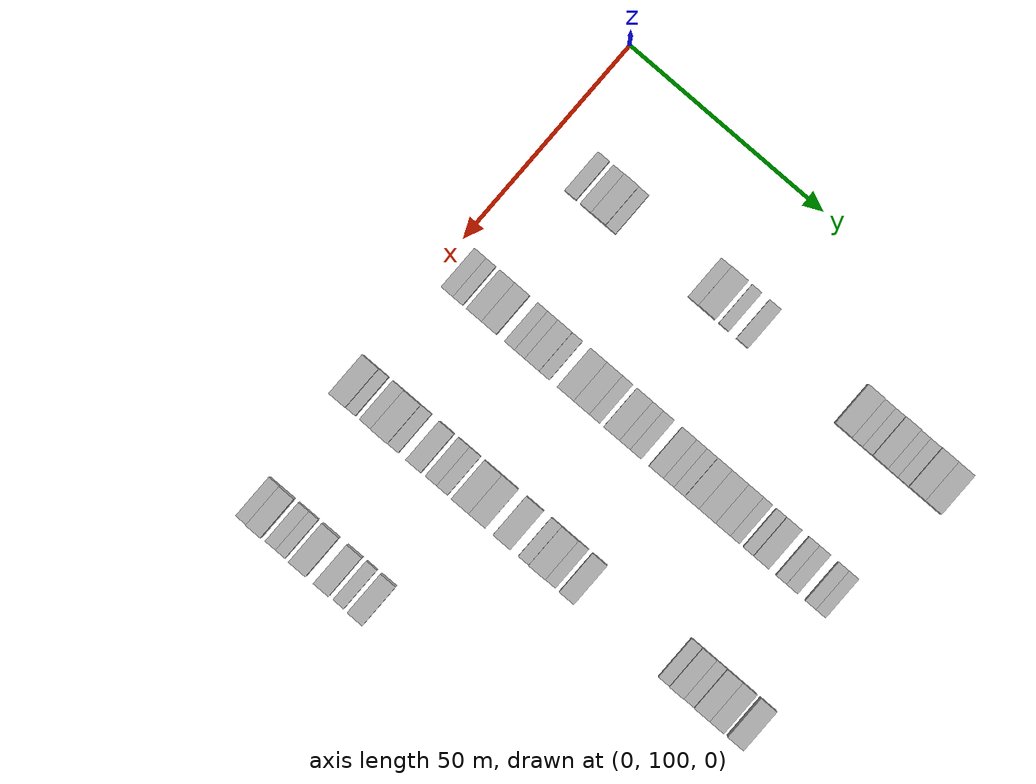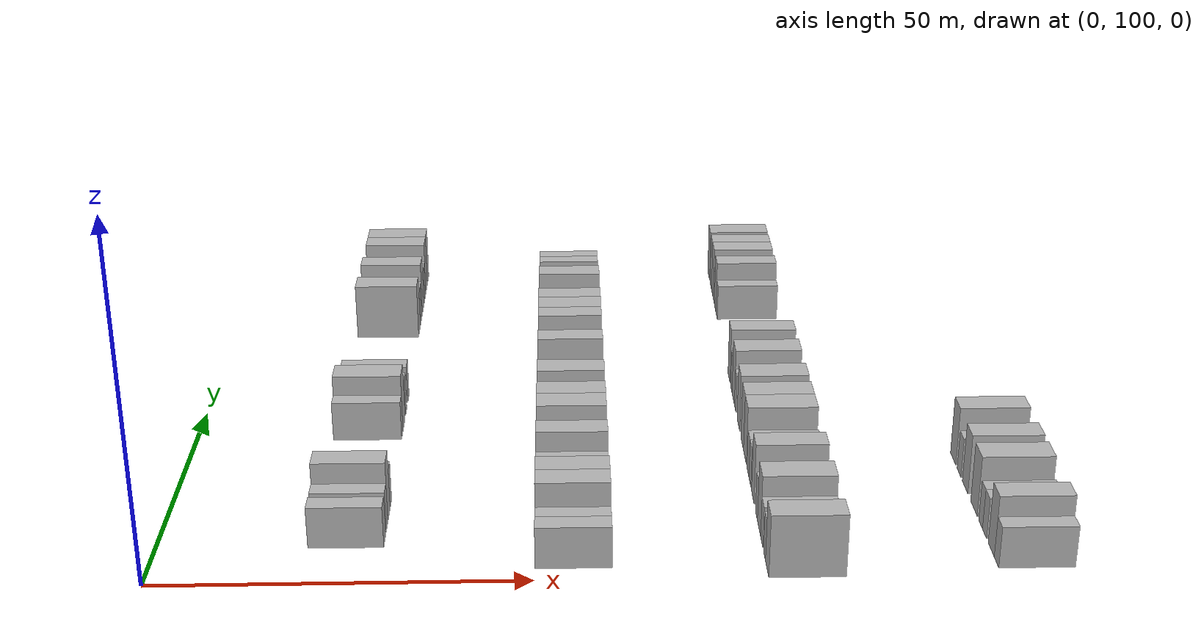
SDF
<sdf version="1.6">
 <world name="default">
  <model name="building_125">
   <static>1</static>
   <pose>25.0000 110.4807 0 0.000000 0.000000 0.000000</pose>
   <link name="link">
    <pose>0 0 3.00 0 0 0</pose>
    <collision name="collision"><geometry><box><size>10.0000 2.9662 6.0000</size></box></geometry></collision>
    <visual name="visual">
     <cast_shadows>0</cast_shadows>
     <geometry><box><size>10.0000 2.9662 6.0000</size></box></geometry>
     <material>
      <script>
       <uri>model://HANNAS_wall/materials/scripts</uri>
       <uri>model://HANNAS_wall/materials/textures</uri>
       <name>vrc/HANNAS_wall</name>
      </script>
     </material>
    </visual>
   </link>
  </model>
  <model name="building_126">
   <static>1</static>
   <pose>25.0000 114.3628 0 0.000000 0.000000 0.000000</pose>
   <link name="link">
    <pose>0 0 3.00 0 0 0</pose>
    <collision name="collision"><geometry><box><size>10.0000 2.7980 6.0000</size></box></geometry></collision>
    <visual name="visual">
     <cast_shadows>0</cast_shadows>
     <geometry><box><size>10.0000 2.7980 6.0000</size></box></geometry>
     <material>
      <script>
       <uri>model://HANNAS_wall/materials/scripts</uri>
       <uri>model://HANNAS_wall/materials/textures</uri>
       <name>vrc/HANNAS_wall</name>
      </script>
     </material>
    </visual>
   </link>
  </model>
  <model name="building_127">
   <static>1</static>
   <pose>25.0000 117.6512 0 0.000000 0.000000 0.000000</pose>
   <link name="link">
    <pose>0 0 4.50 0 0 0</pose>
    <collision name="collision"><geometry><box><size>10.0000 3.7790 9.0000</size></box></geometry></collision>
    <visual name="visual">
     <cast_shadows>0</cast_shadows>
     <geometry><box><size>10.0000 3.7790 9.0000</size></box></geometry>
     <material>
      <script>
       <uri>model://HANNAS_wall/materials/scripts</uri>
       <uri>model://HANNAS_wall/materials/textures</uri>
       <name>vrc/HANNAS_wall</name>
      </script>
     </material>
    </visual>
   </link>
  </model>
  <model name="building_128">
   <static>1</static>
   <pose>25.0000 120.8240 0 0.000000 0.000000 0.000000</pose>
   <link name="link">
    <pose>0 0 3.00 0 0 0</pose>
    <collision name="collision"><geometry><box><size>10.0000 2.5666 6.0000</size></box></geometry></collision>
    <visual name="visual">
     <cast_shadows>0</cast_shadows>
     <geometry><box><size>10.0000 2.5666 6.0000</size></box></geometry>
     <material>
      <script>
       <uri>model://HANNAS_wall/materials/scripts</uri>
       <uri>model://HANNAS_wall/materials/textures</uri>
       <name>vrc/HANNAS_wall</name>
      </script>
     </material>
    </visual>
   </link>
  </model>
  <model name="building_129">
   <static>1</static>
   <pose>25.0000 142.0770 0 0.000000 0.000000 0.000000</pose>
   <link name="link">
    <pose>0 0 3.00 0 0 0</pose>
    <collision name="collision"><geometry><box><size>10.0000 2.6464 6.0000</size></box></geometry></collision>
    <visual name="visual">
     <cast_shadows>0</cast_shadows>
     <geometry><box><size>10.0000 2.6464 6.0000</size></box></geometry>
     <material>
      <script>
       <uri>model://HANNAS_wall/materials/scripts</uri>
       <uri>model://HANNAS_wall/materials/textures</uri>
       <name>vrc/HANNAS_wall</name>
      </script>
     </material>
    </visual>
   </link>
  </model>
  <model name="building_130">
   <static>1</static>
   <pose>25.0000 145.5510 0 0.000000 0.000000 0.000000</pose>
   <link name="link">
    <pose>0 0 4.50 0 0 0</pose>
    <collision name="collision"><geometry><box><size>10.0000 4.3016 9.0000</size></box></geometry></collision>
    <visual name="visual">
     <cast_shadows>0</cast_shadows>
     <geometry><box><size>10.0000 4.3016 9.0000</size></box></geometry>
     <material>
      <script>
       <uri>model://HANNAS_wall/materials/scripts</uri>
       <uri>model://HANNAS_wall/materials/textures</uri>
       <name>vrc/HANNAS_wall</name>
      </script>
     </material>
    </visual>
   </link>
  </model>
  <model name="building_131">
   <static>1</static>
   <pose>25.0000 149.9685 0 0.000000 0.000000 0.000000</pose>
   <link name="link">
    <pose>0 0 3.00 0 0 0</pose>
    <collision name="collision"><geometry><box><size>10.0000 2.5332 6.0000</size></box></geometry></collision>
    <visual name="visual">
     <cast_shadows>0</cast_shadows>
     <geometry><box><size>10.0000 2.5332 6.0000</size></box></geometry>
     <material>
      <script>
       <uri>model://HANNAS_wall/materials/scripts</uri>
       <uri>model://HANNAS_wall/materials/textures</uri>
       <name>vrc/HANNAS_wall</name>
      </script>
     </material>
    </visual>
   </link>
  </model>
  <model name="building_132">
   <static>1</static>
   <pose>25.0000 154.7337 0 0.000000 0.000000 0.000000</pose>
   <link name="link">
    <pose>0 0 3.00 0 0 0</pose>
    <collision name="collision"><geometry><box><size>10.0000 2.9973 6.0000</size></box></geometry></collision>
    <visual name="visual">
     <cast_shadows>0</cast_shadows>
     <geometry><box><size>10.0000 2.9973 6.0000</size></box></geometry>
     <material>
      <script>
       <uri>model://HANNAS_wall/materials/scripts</uri>
       <uri>model://HANNAS_wall/materials/textures</uri>
       <name>vrc/HANNAS_wall</name>
      </script>
     </material>
    </visual>
   </link>
  </model>
  <model name="building_133">
   <static>1</static>
   <pose>25.0000 180.7126 0 0.000000 0.000000 0.000000</pose>
   <link name="link">
    <pose>0 0 4.50 0 0 0</pose>
    <collision name="collision"><geometry><box><size>10.0000 4.3202 9.0000</size></box></geometry></collision>
    <visual name="visual">
     <cast_shadows>0</cast_shadows>
     <geometry><box><size>10.0000 4.3202 9.0000</size></box></geometry>
     <material>
      <script>
       <uri>model://HANNAS_wall/materials/scripts</uri>
       <uri>model://HANNAS_wall/materials/textures</uri>
       <name>vrc/HANNAS_wall</name>
      </script>
     </material>
    </visual>
   </link>
  </model>
  <model name="building_134">
   <static>1</static>
   <pose>25.0000 184.2763 0 0.000000 0.000000 0.000000</pose>
   <link name="link">
    <pose>0 0 3.00 0 0 0</pose>
    <collision name="collision"><geometry><box><size>10.0000 2.8073 6.0000</size></box></geometry></collision>
    <visual name="visual">
     <cast_shadows>0</cast_shadows>
     <geometry><box><size>10.0000 2.8073 6.0000</size></box></geometry>
     <material>
      <script>
       <uri>model://HANNAS_wall/materials/scripts</uri>
       <uri>model://HANNAS_wall/materials/textures</uri>
       <name>vrc/HANNAS_wall</name>
      </script>
     </material>
    </visual>
   </link>
  </model>
  <model name="building_135">
   <static>1</static>
   <pose>25.0000 186.9488 0 0.000000 0.000000 0.000000</pose>
   <link name="link">
    <pose>0 0 3.00 0 0 0</pose>
    <collision name="collision"><geometry><box><size>10.0000 2.5378 6.0000</size></box></geometry></collision>
    <visual name="visual">
     <cast_shadows>0</cast_shadows>
     <geometry><box><size>10.0000 2.5378 6.0000</size></box></geometry>
     <material>
      <script>
       <uri>model://HANNAS_wall/materials/scripts</uri>
       <uri>model://HANNAS_wall/materials/textures</uri>
       <name>vrc/HANNAS_wall</name>
      </script>
     </material>
    </visual>
   </link>
  </model>
  <model name="building_136">
   <static>1</static>
   <pose>25.0000 190.1653 0 0.000000 0.000000 0.000000</pose>
   <link name="link">
    <pose>0 0 4.50 0 0 0</pose>
    <collision name="collision"><geometry><box><size>10.0000 3.8951 9.0000</size></box></geometry></collision>
    <visual name="visual">
     <cast_shadows>0</cast_shadows>
     <geometry><box><size>10.0000 3.8951 9.0000</size></box></geometry>
     <material>
      <script>
       <uri>model://HANNAS_wall/materials/scripts</uri>
       <uri>model://HANNAS_wall/materials/textures</uri>
       <name>vrc/HANNAS_wall</name>
      </script>
     </material>
    </visual>
   </link>
  </model>
  <model name="building_137">
   <static>1</static>
   <pose>25.0000 193.4277 0 0.000000 0.000000 0.000000</pose>
   <link name="link">
    <pose>0 0 3.00 0 0 0</pose>
    <collision name="collision"><geometry><box><size>10.0000 2.6296 6.0000</size></box></geometry></collision>
    <visual name="visual">
     <cast_shadows>0</cast_shadows>
     <geometry><box><size>10.0000 2.6296 6.0000</size></box></geometry>
     <material>
      <script>
       <uri>model://HANNAS_wall/materials/scripts</uri>
       <uri>model://HANNAS_wall/materials/textures</uri>
       <name>vrc/HANNAS_wall</name>
      </script>
     </material>
    </visual>
   </link>
  </model>
  <model name="building_138">
   <static>1</static>
   <pose>25.0000 196.1361 0 0.000000 0.000000 0.000000</pose>
   <link name="link">
    <pose>0 0 3.00 0 0 0</pose>
    <collision name="collision"><geometry><box><size>10.0000 2.7871 6.0000</size></box></geometry></collision>
    <visual name="visual">
     <cast_shadows>0</cast_shadows>
     <geometry><box><size>10.0000 2.7871 6.0000</size></box></geometry>
     <material>
      <script>
       <uri>model://HANNAS_wall/materials/scripts</uri>
       <uri>model://HANNAS_wall/materials/textures</uri>
       <name>vrc/HANNAS_wall</name>
      </script>
     </material>
    </visual>
   </link>
  </model>
  <model name="building_139">
   <static>1</static>
   <pose>25.0000 199.6155 0 0.000000 0.000000 0.000000</pose>
   <link name="link">
    <pose>0 0 4.50 0 0 0</pose>
    <collision name="collision"><geometry><box><size>10.0000 4.1717 9.0000</size></box></geometry></collision>
    <visual name="visual">
     <cast_shadows>0</cast_shadows>
     <geometry><box><size>10.0000 4.1717 9.0000</size></box></geometry>
     <material>
      <script>
       <uri>model://HANNAS_wall/materials/scripts</uri>
       <uri>model://HANNAS_wall/materials/textures</uri>
       <name>vrc/HANNAS_wall</name>
      </script>
     </material>
    </visual>
   </link>
  </model>
  <model name="building_140">
   <static>1</static>
   <pose>25.0000 203.7796 0 0.000000 0.000000 0.000000</pose>
   <link name="link">
    <pose>0 0 4.50 0 0 0</pose>
    <collision name="collision"><geometry><box><size>10.0000 4.1566 9.0000</size></box></geometry></collision>
    <visual name="visual">
     <cast_shadows>0</cast_shadows>
     <geometry><box><size>10.0000 4.1566 9.0000</size></box></geometry>
     <material>
      <script>
       <uri>model://HANNAS_wall/materials/scripts</uri>
       <uri>model://HANNAS_wall/materials/textures</uri>
       <name>vrc/HANNAS_wall</name>
      </script>
     </material>
    </visual>
   </link>
  </model>
  <model name="building_345">
   <static>1</static>
   <pose>55.0000 104.5008 0 0.000000 0.000000 0.000000</pose>
   <link name="link">
    <pose>0 0 3.00 0 0 0</pose>
    <collision name="collision"><geometry><box><size>10.0000 2.9986 6.0000</size></box></geometry></collision>
    <visual name="visual">
     <cast_shadows>0</cast_shadows>
     <geometry><box><size>10.0000 2.9986 6.0000</size></box></geometry>
     <material>
      <script>
       <uri>model://HANNAS_wall/materials/scripts</uri>
       <uri>model://HANNAS_wall/materials/textures</uri>
       <name>vrc/HANNAS_wall</name>
      </script>
     </material>
    </visual>
   </link>
  </model>
  <model name="building_346">
   <static>1</static>
   <pose>55.0000 107.2713 0 0.000000 0.000000 0.000000</pose>
   <link name="link">
    <pose>0 0 3.00 0 0 0</pose>
    <collision name="collision"><geometry><box><size>10.0000 2.5424 6.0000</size></box></geometry></collision>
    <visual name="visual">
     <cast_shadows>0</cast_shadows>
     <geometry><box><size>10.0000 2.5424 6.0000</size></box></geometry>
     <material>
      <script>
       <uri>model://HANNAS_wall/materials/scripts</uri>
       <uri>model://HANNAS_wall/materials/textures</uri>
       <name>vrc/HANNAS_wall</name>
      </script>
     </material>
    </visual>
   </link>
  </model>
  <model name="building_347">
   <static>1</static>
   <pose>55.0000 111.4859 0 0.000000 0.000000 0.000000</pose>
   <link name="link">
    <pose>0 0 4.50 0 0 0</pose>
    <collision name="collision"><geometry><box><size>10.0000 3.8870 9.0000</size></box></geometry></collision>
    <visual name="visual">
     <cast_shadows>0</cast_shadows>
     <geometry><box><size>10.0000 3.8870 9.0000</size></box></geometry>
     <material>
      <script>
       <uri>model://HANNAS_wall/materials/scripts</uri>
       <uri>model://HANNAS_wall/materials/textures</uri>
       <name>vrc/HANNAS_wall</name>
      </script>
     </material>
    </visual>
   </link>
  </model>
  <model name="building_348">
   <static>1</static>
   <pose>55.0000 115.3517 0 0.000000 0.000000 0.000000</pose>
   <link name="link">
    <pose>0 0 4.50 0 0 0</pose>
    <collision name="collision"><geometry><box><size>10.0000 3.8447 9.0000</size></box></geometry></collision>
    <visual name="visual">
     <cast_shadows>0</cast_shadows>
     <geometry><box><size>10.0000 3.8447 9.0000</size></box></geometry>
     <material>
      <script>
       <uri>model://HANNAS_wall/materials/scripts</uri>
       <uri>model://HANNAS_wall/materials/textures</uri>
       <name>vrc/HANNAS_wall</name>
      </script>
     </material>
    </visual>
   </link>
  </model>
  <model name="building_349">
   <static>1</static>
   <pose>55.0000 120.5717 0 0.000000 0.000000 0.000000</pose>
   <link name="link">
    <pose>0 0 3.00 0 0 0</pose>
    <collision name="collision"><geometry><box><size>10.0000 2.5952 6.0000</size></box></geometry></collision>
    <visual name="visual">
     <cast_shadows>0</cast_shadows>
     <geometry><box><size>10.0000 2.5952 6.0000</size></box></geometry>
     <material>
      <script>
       <uri>model://HANNAS_wall/materials/scripts</uri>
       <uri>model://HANNAS_wall/materials/textures</uri>
       <name>vrc/HANNAS_wall</name>
      </script>
     </material>
    </visual>
   </link>
  </model>
  <model name="building_350">
   <static>1</static>
   <pose>55.0000 123.1910 0 0.000000 0.000000 0.000000</pose>
   <link name="link">
    <pose>0 0 3.00 0 0 0</pose>
    <collision name="collision"><geometry><box><size>10.0000 2.6434 6.0000</size></box></geometry></collision>
    <visual name="visual">
     <cast_shadows>0</cast_shadows>
     <geometry><box><size>10.0000 2.6434 6.0000</size></box></geometry>
     <material>
      <script>
       <uri>model://HANNAS_wall/materials/scripts</uri>
       <uri>model://HANNAS_wall/materials/textures</uri>
       <name>vrc/HANNAS_wall</name>
      </script>
     </material>
    </visual>
   </link>
  </model>
  <model name="building_351">
   <static>1</static>
   <pose>55.0000 126.3863 0 0.000000 0.000000 0.000000</pose>
   <link name="link">
    <pose>0 0 4.50 0 0 0</pose>
    <collision name="collision"><geometry><box><size>10.0000 3.7472 9.0000</size></box></geometry></collision>
    <visual name="visual">
     <cast_shadows>0</cast_shadows>
     <geometry><box><size>10.0000 3.7472 9.0000</size></box></geometry>
     <material>
      <script>
       <uri>model://HANNAS_wall/materials/scripts</uri>
       <uri>model://HANNAS_wall/materials/textures</uri>
       <name>vrc/HANNAS_wall</name>
      </script>
     </material>
    </visual>
   </link>
  </model>
  <model name="building_352">
   <static>1</static>
   <pose>55.0000 129.5695 0 0.000000 0.000000 0.000000</pose>
   <link name="link">
    <pose>0 0 3.00 0 0 0</pose>
    <collision name="collision"><geometry><box><size>10.0000 2.6191 6.0000</size></box></geometry></collision>
    <visual name="visual">
     <cast_shadows>0</cast_shadows>
     <geometry><box><size>10.0000 2.6191 6.0000</size></box></geometry>
     <material>
      <script>
       <uri>model://HANNAS_wall/materials/scripts</uri>
       <uri>model://HANNAS_wall/materials/textures</uri>
       <name>vrc/HANNAS_wall</name>
      </script>
     </material>
    </visual>
   </link>
  </model>
  <model name="building_353">
   <static>1</static>
   <pose>55.0000 135.0083 0 0.000000 0.000000 0.000000</pose>
   <link name="link">
    <pose>0 0 4.50 0 0 0</pose>
    <collision name="collision"><geometry><box><size>10.0000 4.2585 9.0000</size></box></geometry></collision>
    <visual name="visual">
     <cast_shadows>0</cast_shadows>
     <geometry><box><size>10.0000 4.2585 9.0000</size></box></geometry>
     <material>
      <script>
       <uri>model://HANNAS_wall/materials/scripts</uri>
       <uri>model://HANNAS_wall/materials/textures</uri>
       <name>vrc/HANNAS_wall</name>
      </script>
     </material>
    </visual>
   </link>
  </model>
  <model name="building_354">
   <static>1</static>
   <pose>55.0000 139.1431 0 0.000000 0.000000 0.000000</pose>
   <link name="link">
    <pose>0 0 4.50 0 0 0</pose>
    <collision name="collision"><geometry><box><size>10.0000 4.0112 9.0000</size></box></geometry></collision>
    <visual name="visual">
     <cast_shadows>0</cast_shadows>
     <geometry><box><size>10.0000 4.0112 9.0000</size></box></geometry>
     <material>
      <script>
       <uri>model://HANNAS_wall/materials/scripts</uri>
       <uri>model://HANNAS_wall/materials/textures</uri>
       <name>vrc/HANNAS_wall</name>
      </script>
     </material>
    </visual>
   </link>
  </model>
  <model name="building_355">
   <static>1</static>
   <pose>55.0000 142.4953 0 0.000000 0.000000 0.000000</pose>
   <link name="link">
    <pose>0 0 3.00 0 0 0</pose>
    <collision name="collision"><geometry><box><size>10.0000 2.6932 6.0000</size></box></geometry></collision>
    <visual name="visual">
     <cast_shadows>0</cast_shadows>
     <geometry><box><size>10.0000 2.6932 6.0000</size></box></geometry>
     <material>
      <script>
       <uri>model://HANNAS_wall/materials/scripts</uri>
       <uri>model://HANNAS_wall/materials/textures</uri>
       <name>vrc/HANNAS_wall</name>
      </script>
     </material>
    </visual>
   </link>
  </model>
  <model name="building_356">
   <static>1</static>
   <pose>55.0000 146.8747 0 0.000000 0.000000 0.000000</pose>
   <link name="link">
    <pose>0 0 4.50 0 0 0</pose>
    <collision name="collision"><geometry><box><size>10.0000 4.0655 9.0000</size></box></geometry></collision>
    <visual name="visual">
     <cast_shadows>0</cast_shadows>
     <geometry><box><size>10.0000 4.0655 9.0000</size></box></geometry>
     <material>
      <script>
       <uri>model://HANNAS_wall/materials/scripts</uri>
       <uri>model://HANNAS_wall/materials/textures</uri>
       <name>vrc/HANNAS_wall</name>
      </script>
     </material>
    </visual>
   </link>
  </model>
  <model name="building_357">
   <static>1</static>
   <pose>55.0000 150.2902 0 0.000000 0.000000 0.000000</pose>
   <link name="link">
    <pose>0 0 3.00 0 0 0</pose>
    <collision name="collision"><geometry><box><size>10.0000 2.7656 6.0000</size></box></geometry></collision>
    <visual name="visual">
     <cast_shadows>0</cast_shadows>
     <geometry><box><size>10.0000 2.7656 6.0000</size></box></geometry>
     <material>
      <script>
       <uri>model://HANNAS_wall/materials/scripts</uri>
       <uri>model://HANNAS_wall/materials/textures</uri>
       <name>vrc/HANNAS_wall</name>
      </script>
     </material>
    </visual>
   </link>
  </model>
  <model name="building_358">
   <static>1</static>
   <pose>55.0000 153.0935 0 0.000000 0.000000 0.000000</pose>
   <link name="link">
    <pose>0 0 3.00 0 0 0</pose>
    <collision name="collision"><geometry><box><size>10.0000 2.8410 6.0000</size></box></geometry></collision>
    <visual name="visual">
     <cast_shadows>0</cast_shadows>
     <geometry><box><size>10.0000 2.8410 6.0000</size></box></geometry>
     <material>
      <script>
       <uri>model://HANNAS_wall/materials/scripts</uri>
       <uri>model://HANNAS_wall/materials/textures</uri>
       <name>vrc/HANNAS_wall</name>
      </script>
     </material>
    </visual>
   </link>
  </model>
  <model name="building_359">
   <static>1</static>
   <pose>55.0000 158.3457 0 0.000000 0.000000 0.000000</pose>
   <link name="link">
    <pose>0 0 4.50 0 0 0</pose>
    <collision name="collision"><geometry><box><size>10.0000 3.6633 9.0000</size></box></geometry></collision>
    <visual name="visual">
     <cast_shadows>0</cast_shadows>
     <geometry><box><size>10.0000 3.6633 9.0000</size></box></geometry>
     <material>
      <script>
       <uri>model://HANNAS_wall/materials/scripts</uri>
       <uri>model://HANNAS_wall/materials/textures</uri>
       <name>vrc/HANNAS_wall</name>
      </script>
     </material>
    </visual>
   </link>
  </model>
  <model name="building_360">
   <static>1</static>
   <pose>55.0000 161.5449 0 0.000000 0.000000 0.000000</pose>
   <link name="link">
    <pose>0 0 3.00 0 0 0</pose>
    <collision name="collision"><geometry><box><size>10.0000 2.7351 6.0000</size></box></geometry></collision>
    <visual name="visual">
     <cast_shadows>0</cast_shadows>
     <geometry><box><size>10.0000 2.7351 6.0000</size></box></geometry>
     <material>
      <script>
       <uri>model://HANNAS_wall/materials/scripts</uri>
       <uri>model://HANNAS_wall/materials/textures</uri>
       <name>vrc/HANNAS_wall</name>
      </script>
     </material>
    </visual>
   </link>
  </model>
  <model name="building_361">
   <static>1</static>
   <pose>55.0000 164.2989 0 0.000000 0.000000 0.000000</pose>
   <link name="link">
    <pose>0 0 3.00 0 0 0</pose>
    <collision name="collision"><geometry><box><size>10.0000 2.7728 6.0000</size></box></geometry></collision>
    <visual name="visual">
     <cast_shadows>0</cast_shadows>
     <geometry><box><size>10.0000 2.7728 6.0000</size></box></geometry>
     <material>
      <script>
       <uri>model://HANNAS_wall/materials/scripts</uri>
       <uri>model://HANNAS_wall/materials/textures</uri>
       <name>vrc/HANNAS_wall</name>
      </script>
     </material>
    </visual>
   </link>
  </model>
  <model name="building_362">
   <static>1</static>
   <pose>55.0000 167.5028 0 0.000000 0.000000 0.000000</pose>
   <link name="link">
    <pose>0 0 4.50 0 0 0</pose>
    <collision name="collision"><geometry><box><size>10.0000 3.6351 9.0000</size></box></geometry></collision>
    <visual name="visual">
     <cast_shadows>0</cast_shadows>
     <geometry><box><size>10.0000 3.6351 9.0000</size></box></geometry>
     <material>
      <script>
       <uri>model://HANNAS_wall/materials/scripts</uri>
       <uri>model://HANNAS_wall/materials/textures</uri>
       <name>vrc/HANNAS_wall</name>
      </script>
     </material>
    </visual>
   </link>
  </model>
  <model name="building_363">
   <static>1</static>
   <pose>55.0000 171.4588 0 0.000000 0.000000 0.000000</pose>
   <link name="link">
    <pose>0 0 4.50 0 0 0</pose>
    <collision name="collision"><geometry><box><size>10.0000 4.2770 9.0000</size></box></geometry></collision>
    <visual name="visual">
     <cast_shadows>0</cast_shadows>
     <geometry><box><size>10.0000 4.2770 9.0000</size></box></geometry>
     <material>
      <script>
       <uri>model://HANNAS_wall/materials/scripts</uri>
       <uri>model://HANNAS_wall/materials/textures</uri>
       <name>vrc/HANNAS_wall</name>
      </script>
     </material>
    </visual>
   </link>
  </model>
  <model name="building_364">
   <static>1</static>
   <pose>55.0000 175.4899 0 0.000000 0.000000 0.000000</pose>
   <link name="link">
    <pose>0 0 4.50 0 0 0</pose>
    <collision name="collision"><geometry><box><size>10.0000 3.7850 9.0000</size></box></geometry></collision>
    <visual name="visual">
     <cast_shadows>0</cast_shadows>
     <geometry><box><size>10.0000 3.7850 9.0000</size></box></geometry>
     <material>
      <script>
       <uri>model://HANNAS_wall/materials/scripts</uri>
       <uri>model://HANNAS_wall/materials/textures</uri>
       <name>vrc/HANNAS_wall</name>
      </script>
     </material>
    </visual>
   </link>
  </model>
  <model name="building_365">
   <static>1</static>
   <pose>55.0000 178.6080 0 0.000000 0.000000 0.000000</pose>
   <link name="link">
    <pose>0 0 3.00 0 0 0</pose>
    <collision name="collision"><geometry><box><size>10.0000 2.4512 6.0000</size></box></geometry></collision>
    <visual name="visual">
     <cast_shadows>0</cast_shadows>
     <geometry><box><size>10.0000 2.4512 6.0000</size></box></geometry>
     <material>
      <script>
       <uri>model://HANNAS_wall/materials/scripts</uri>
       <uri>model://HANNAS_wall/materials/textures</uri>
       <name>vrc/HANNAS_wall</name>
      </script>
     </material>
    </visual>
   </link>
  </model>
  <model name="building_366">
   <static>1</static>
   <pose>55.0000 182.1146 0 0.000000 0.000000 0.000000</pose>
   <link name="link">
    <pose>0 0 3.00 0 0 0</pose>
    <collision name="collision"><geometry><box><size>10.0000 2.5620 6.0000</size></box></geometry></collision>
    <visual name="visual">
     <cast_shadows>0</cast_shadows>
     <geometry><box><size>10.0000 2.5620 6.0000</size></box></geometry>
     <material>
      <script>
       <uri>model://HANNAS_wall/materials/scripts</uri>
       <uri>model://HANNAS_wall/materials/textures</uri>
       <name>vrc/HANNAS_wall</name>
      </script>
     </material>
    </visual>
   </link>
  </model>
  <model name="building_367">
   <static>1</static>
   <pose>55.0000 185.3328 0 0.000000 0.000000 0.000000</pose>
   <link name="link">
    <pose>0 0 4.50 0 0 0</pose>
    <collision name="collision"><geometry><box><size>10.0000 3.8744 9.0000</size></box></geometry></collision>
    <visual name="visual">
     <cast_shadows>0</cast_shadows>
     <geometry><box><size>10.0000 3.8744 9.0000</size></box></geometry>
     <material>
      <script>
       <uri>model://HANNAS_wall/materials/scripts</uri>
       <uri>model://HANNAS_wall/materials/textures</uri>
       <name>vrc/HANNAS_wall</name>
      </script>
     </material>
    </visual>
   </link>
  </model>
  <model name="building_368">
   <static>1</static>
   <pose>55.0000 190.5944 0 0.000000 0.000000 0.000000</pose>
   <link name="link">
    <pose>0 0 3.00 0 0 0</pose>
    <collision name="collision"><geometry><box><size>10.0000 2.6488 6.0000</size></box></geometry></collision>
    <visual name="visual">
     <cast_shadows>0</cast_shadows>
     <geometry><box><size>10.0000 2.6488 6.0000</size></box></geometry>
     <material>
      <script>
       <uri>model://HANNAS_wall/materials/scripts</uri>
       <uri>model://HANNAS_wall/materials/textures</uri>
       <name>vrc/HANNAS_wall</name>
      </script>
     </material>
    </visual>
   </link>
  </model>
  <model name="building_369">
   <static>1</static>
   <pose>55.0000 193.3656 0 0.000000 0.000000 0.000000</pose>
   <link name="link">
    <pose>0 0 3.00 0 0 0</pose>
    <collision name="collision"><geometry><box><size>10.0000 2.8935 6.0000</size></box></geometry></collision>
    <visual name="visual">
     <cast_shadows>0</cast_shadows>
     <geometry><box><size>10.0000 2.8935 6.0000</size></box></geometry>
     <material>
      <script>
       <uri>model://HANNAS_wall/materials/scripts</uri>
       <uri>model://HANNAS_wall/materials/textures</uri>
       <name>vrc/HANNAS_wall</name>
      </script>
     </material>
    </visual>
   </link>
  </model>
  <model name="building_370">
   <static>1</static>
   <pose>55.0000 198.1621 0 0.000000 0.000000 0.000000</pose>
   <link name="link">
    <pose>0 0 3.00 0 0 0</pose>
    <collision name="collision"><geometry><box><size>10.0000 2.6996 6.0000</size></box></geometry></collision>
    <visual name="visual">
     <cast_shadows>0</cast_shadows>
     <geometry><box><size>10.0000 2.6996 6.0000</size></box></geometry>
     <material>
      <script>
       <uri>model://HANNAS_wall/materials/scripts</uri>
       <uri>model://HANNAS_wall/materials/textures</uri>
       <name>vrc/HANNAS_wall</name>
      </script>
     </material>
    </visual>
   </link>
  </model>
  <model name="building_371">
   <static>1</static>
   <pose>55.0000 200.7630 0 0.000000 0.000000 0.000000</pose>
   <link name="link">
    <pose>0 0 3.00 0 0 0</pose>
    <collision name="collision"><geometry><box><size>10.0000 2.5020 6.0000</size></box></geometry></collision>
    <visual name="visual">
     <cast_shadows>0</cast_shadows>
     <geometry><box><size>10.0000 2.5020 6.0000</size></box></geometry>
     <material>
      <script>
       <uri>model://HANNAS_wall/materials/scripts</uri>
       <uri>model://HANNAS_wall/materials/textures</uri>
       <name>vrc/HANNAS_wall</name>
      </script>
     </material>
    </visual>
   </link>
  </model>
  <model name="building_568">
   <static>1</static>
   <pose>85.0000 102.1475 0 0.000000 0.000000 0.000000</pose>
   <link name="link">
    <pose>0 0 4.50 0 0 0</pose>
    <collision name="collision"><geometry><box><size>10.0000 4.2607 9.0000</size></box></geometry></collision>
    <visual name="visual">
     <cast_shadows>0</cast_shadows>
     <geometry><box><size>10.0000 4.2607 9.0000</size></box></geometry>
     <material>
      <script>
       <uri>model://HANNAS_wall/materials/scripts</uri>
       <uri>model://HANNAS_wall/materials/textures</uri>
       <name>vrc/HANNAS_wall</name>
      </script>
     </material>
    </visual>
   </link>
  </model>
  <model name="building_569">
   <static>1</static>
   <pose>85.0000 105.5146 0 0.000000 0.000000 0.000000</pose>
   <link name="link">
    <pose>0 0 3.00 0 0 0</pose>
    <collision name="collision"><geometry><box><size>10.0000 2.4736 6.0000</size></box></geometry></collision>
    <visual name="visual">
     <cast_shadows>0</cast_shadows>
     <geometry><box><size>10.0000 2.4736 6.0000</size></box></geometry>
     <material>
      <script>
       <uri>model://HANNAS_wall/materials/scripts</uri>
       <uri>model://HANNAS_wall/materials/textures</uri>
       <name>vrc/HANNAS_wall</name>
      </script>
     </material>
    </visual>
   </link>
  </model>
  <model name="building_570">
   <static>1</static>
   <pose>85.0000 109.2283 0 0.000000 0.000000 0.000000</pose>
   <link name="link">
    <pose>0 0 3.00 0 0 0</pose>
    <collision name="collision"><geometry><box><size>10.0000 2.9537 6.0000</size></box></geometry></collision>
    <visual name="visual">
     <cast_shadows>0</cast_shadows>
     <geometry><box><size>10.0000 2.9537 6.0000</size></box></geometry>
     <material>
      <script>
       <uri>model://HANNAS_wall/materials/scripts</uri>
       <uri>model://HANNAS_wall/materials/textures</uri>
       <name>vrc/HANNAS_wall</name>
      </script>
     </material>
    </visual>
   </link>
  </model>
  <model name="building_571">
   <static>1</static>
   <pose>85.0000 112.8946 0 0.000000 0.000000 0.000000</pose>
   <link name="link">
    <pose>0 0 4.50 0 0 0</pose>
    <collision name="collision"><geometry><box><size>10.0000 4.3790 9.0000</size></box></geometry></collision>
    <visual name="visual">
     <cast_shadows>0</cast_shadows>
     <geometry><box><size>10.0000 4.3790 9.0000</size></box></geometry>
     <material>
      <script>
       <uri>model://HANNAS_wall/materials/scripts</uri>
       <uri>model://HANNAS_wall/materials/textures</uri>
       <name>vrc/HANNAS_wall</name>
      </script>
     </material>
    </visual>
   </link>
  </model>
  <model name="building_572">
   <static>1</static>
   <pose>85.0000 116.4503 0 0.000000 0.000000 0.000000</pose>
   <link name="link">
    <pose>0 0 3.00 0 0 0</pose>
    <collision name="collision"><geometry><box><size>10.0000 2.7324 6.0000</size></box></geometry></collision>
    <visual name="visual">
     <cast_shadows>0</cast_shadows>
     <geometry><box><size>10.0000 2.7324 6.0000</size></box></geometry>
     <material>
      <script>
       <uri>model://HANNAS_wall/materials/scripts</uri>
       <uri>model://HANNAS_wall/materials/textures</uri>
       <name>vrc/HANNAS_wall</name>
      </script>
     </material>
    </visual>
   </link>
  </model>
  <model name="building_573">
   <static>1</static>
   <pose>85.0000 121.7574 0 0.000000 0.000000 0.000000</pose>
   <link name="link">
    <pose>0 0 4.50 0 0 0</pose>
    <collision name="collision"><geometry><box><size>10.0000 3.8819 9.0000</size></box></geometry></collision>
    <visual name="visual">
     <cast_shadows>0</cast_shadows>
     <geometry><box><size>10.0000 3.8819 9.0000</size></box></geometry>
     <material>
      <script>
       <uri>model://HANNAS_wall/materials/scripts</uri>
       <uri>model://HANNAS_wall/materials/textures</uri>
       <name>vrc/HANNAS_wall</name>
      </script>
     </material>
    </visual>
   </link>
  </model>
  <model name="building_574">
   <static>1</static>
   <pose>85.0000 126.1591 0 0.000000 0.000000 0.000000</pose>
   <link name="link">
    <pose>0 0 3.00 0 0 0</pose>
    <collision name="collision"><geometry><box><size>10.0000 2.9215 6.0000</size></box></geometry></collision>
    <visual name="visual">
     <cast_shadows>0</cast_shadows>
     <geometry><box><size>10.0000 2.9215 6.0000</size></box></geometry>
     <material>
      <script>
       <uri>model://HANNAS_wall/materials/scripts</uri>
       <uri>model://HANNAS_wall/materials/textures</uri>
       <name>vrc/HANNAS_wall</name>
      </script>
     </material>
    </visual>
   </link>
  </model>
  <model name="building_575">
   <static>1</static>
   <pose>85.0000 129.0515 0 0.000000 0.000000 0.000000</pose>
   <link name="link">
    <pose>0 0 3.00 0 0 0</pose>
    <collision name="collision"><geometry><box><size>10.0000 2.8633 6.0000</size></box></geometry></collision>
    <visual name="visual">
     <cast_shadows>0</cast_shadows>
     <geometry><box><size>10.0000 2.8633 6.0000</size></box></geometry>
     <material>
      <script>
       <uri>model://HANNAS_wall/materials/scripts</uri>
       <uri>model://HANNAS_wall/materials/textures</uri>
       <name>vrc/HANNAS_wall</name>
      </script>
     </material>
    </visual>
   </link>
  </model>
  <model name="building_576">
   <static>1</static>
   <pose>85.0000 133.7288 0 0.000000 0.000000 0.000000</pose>
   <link name="link">
    <pose>0 0 4.50 0 0 0</pose>
    <collision name="collision"><geometry><box><size>10.0000 4.4911 9.0000</size></box></geometry></collision>
    <visual name="visual">
     <cast_shadows>0</cast_shadows>
     <geometry><box><size>10.0000 4.4911 9.0000</size></box></geometry>
     <material>
      <script>
       <uri>model://HANNAS_wall/materials/scripts</uri>
       <uri>model://HANNAS_wall/materials/textures</uri>
       <name>vrc/HANNAS_wall</name>
      </script>
     </material>
    </visual>
   </link>
  </model>
  <model name="building_577">
   <static>1</static>
   <pose>85.0000 138.1058 0 0.000000 0.000000 0.000000</pose>
   <link name="link">
    <pose>0 0 4.50 0 0 0</pose>
    <collision name="collision"><geometry><box><size>10.0000 4.2629 9.0000</size></box></geometry></collision>
    <visual name="visual">
     <cast_shadows>0</cast_shadows>
     <geometry><box><size>10.0000 4.2629 9.0000</size></box></geometry>
     <material>
      <script>
       <uri>model://HANNAS_wall/materials/scripts</uri>
       <uri>model://HANNAS_wall/materials/textures</uri>
       <name>vrc/HANNAS_wall</name>
      </script>
     </material>
    </visual>
   </link>
  </model>
  <model name="building_578">
   <static>1</static>
   <pose>85.0000 144.4646 0 0.000000 0.000000 0.000000</pose>
   <link name="link">
    <pose>0 0 4.50 0 0 0</pose>
    <collision name="collision"><geometry><box><size>10.0000 4.4547 9.0000</size></box></geometry></collision>
    <visual name="visual">
     <cast_shadows>0</cast_shadows>
     <geometry><box><size>10.0000 4.4547 9.0000</size></box></geometry>
     <material>
      <script>
       <uri>model://HANNAS_wall/materials/scripts</uri>
       <uri>model://HANNAS_wall/materials/textures</uri>
       <name>vrc/HANNAS_wall</name>
      </script>
     </material>
    </visual>
   </link>
  </model>
  <model name="building_579">
   <static>1</static>
   <pose>85.0000 150.0264 0 0.000000 0.000000 0.000000</pose>
   <link name="link">
    <pose>0 0 3.00 0 0 0</pose>
    <collision name="collision"><geometry><box><size>10.0000 2.6691 6.0000</size></box></geometry></collision>
    <visual name="visual">
     <cast_shadows>0</cast_shadows>
     <geometry><box><size>10.0000 2.6691 6.0000</size></box></geometry>
     <material>
      <script>
       <uri>model://HANNAS_wall/materials/scripts</uri>
       <uri>model://HANNAS_wall/materials/textures</uri>
       <name>vrc/HANNAS_wall</name>
      </script>
     </material>
    </visual>
   </link>
  </model>
  <model name="building_580">
   <static>1</static>
   <pose>85.0000 153.5059 0 0.000000 0.000000 0.000000</pose>
   <link name="link">
    <pose>0 0 4.50 0 0 0</pose>
    <collision name="collision"><geometry><box><size>10.0000 4.2899 9.0000</size></box></geometry></collision>
    <visual name="visual">
     <cast_shadows>0</cast_shadows>
     <geometry><box><size>10.0000 4.2899 9.0000</size></box></geometry>
     <material>
      <script>
       <uri>model://HANNAS_wall/materials/scripts</uri>
       <uri>model://HANNAS_wall/materials/textures</uri>
       <name>vrc/HANNAS_wall</name>
      </script>
     </material>
    </visual>
   </link>
  </model>
  <model name="building_581">
   <static>1</static>
   <pose>85.0000 156.9678 0 0.000000 0.000000 0.000000</pose>
   <link name="link">
    <pose>0 0 3.00 0 0 0</pose>
    <collision name="collision"><geometry><box><size>10.0000 2.6339 6.0000</size></box></geometry></collision>
    <visual name="visual">
     <cast_shadows>0</cast_shadows>
     <geometry><box><size>10.0000 2.6339 6.0000</size></box></geometry>
     <material>
      <script>
       <uri>model://HANNAS_wall/materials/scripts</uri>
       <uri>model://HANNAS_wall/materials/textures</uri>
       <name>vrc/HANNAS_wall</name>
      </script>
     </material>
    </visual>
   </link>
  </model>
  <model name="building_582">
   <static>1</static>
   <pose>85.0000 161.1622 0 0.000000 0.000000 0.000000</pose>
   <link name="link">
    <pose>0 0 4.50 0 0 0</pose>
    <collision name="collision"><geometry><box><size>10.0000 3.7548 9.0000</size></box></geometry></collision>
    <visual name="visual">
     <cast_shadows>0</cast_shadows>
     <geometry><box><size>10.0000 3.7548 9.0000</size></box></geometry>
     <material>
      <script>
       <uri>model://HANNAS_wall/materials/scripts</uri>
       <uri>model://HANNAS_wall/materials/textures</uri>
       <name>vrc/HANNAS_wall</name>
      </script>
     </material>
    </visual>
   </link>
  </model>
  <model name="building_583">
   <static>1</static>
   <pose>85.0000 186.2087 0 0.000000 0.000000 0.000000</pose>
   <link name="link">
    <pose>0 0 3.00 0 0 0</pose>
    <collision name="collision"><geometry><box><size>10.0000 2.7794 6.0000</size></box></geometry></collision>
    <visual name="visual">
     <cast_shadows>0</cast_shadows>
     <geometry><box><size>10.0000 2.7794 6.0000</size></box></geometry>
     <material>
      <script>
       <uri>model://HANNAS_wall/materials/scripts</uri>
       <uri>model://HANNAS_wall/materials/textures</uri>
       <name>vrc/HANNAS_wall</name>
      </script>
     </material>
    </visual>
   </link>
  </model>
  <model name="building_584">
   <static>1</static>
   <pose>85.0000 189.4141 0 0.000000 0.000000 0.000000</pose>
   <link name="link">
    <pose>0 0 4.50 0 0 0</pose>
    <collision name="collision"><geometry><box><size>10.0000 3.6314 9.0000</size></box></geometry></collision>
    <visual name="visual">
     <cast_shadows>0</cast_shadows>
     <geometry><box><size>10.0000 3.6314 9.0000</size></box></geometry>
     <material>
      <script>
       <uri>model://HANNAS_wall/materials/scripts</uri>
       <uri>model://HANNAS_wall/materials/textures</uri>
       <name>vrc/HANNAS_wall</name>
      </script>
     </material>
    </visual>
   </link>
  </model>
  <model name="building_585">
   <static>1</static>
   <pose>85.0000 192.5905 0 0.000000 0.000000 0.000000</pose>
   <link name="link">
    <pose>0 0 3.00 0 0 0</pose>
    <collision name="collision"><geometry><box><size>10.0000 2.7216 6.0000</size></box></geometry></collision>
    <visual name="visual">
     <cast_shadows>0</cast_shadows>
     <geometry><box><size>10.0000 2.7216 6.0000</size></box></geometry>
     <material>
      <script>
       <uri>model://HANNAS_wall/materials/scripts</uri>
       <uri>model://HANNAS_wall/materials/textures</uri>
       <name>vrc/HANNAS_wall</name>
      </script>
     </material>
    </visual>
   </link>
  </model>
  <model name="building_586">
   <static>1</static>
   <pose>85.0000 195.9393 0 0.000000 0.000000 0.000000</pose>
   <link name="link">
    <pose>0 0 4.50 0 0 0</pose>
    <collision name="collision"><geometry><box><size>10.0000 3.9758 9.0000</size></box></geometry></collision>
    <visual name="visual">
     <cast_shadows>0</cast_shadows>
     <geometry><box><size>10.0000 3.9758 9.0000</size></box></geometry>
     <material>
      <script>
       <uri>model://HANNAS_wall/materials/scripts</uri>
       <uri>model://HANNAS_wall/materials/textures</uri>
       <name>vrc/HANNAS_wall</name>
      </script>
     </material>
    </visual>
   </link>
  </model>
  <model name="building_587">
   <static>1</static>
   <pose>85.0000 199.7427 0 0.000000 0.000000 0.000000</pose>
   <link name="link">
    <pose>0 0 4.50 0 0 0</pose>
    <collision name="collision"><geometry><box><size>10.0000 3.6310 9.0000</size></box></geometry></collision>
    <visual name="visual">
     <cast_shadows>0</cast_shadows>
     <geometry><box><size>10.0000 3.6310 9.0000</size></box></geometry>
     <material>
      <script>
       <uri>model://HANNAS_wall/materials/scripts</uri>
       <uri>model://HANNAS_wall/materials/textures</uri>
       <name>vrc/HANNAS_wall</name>
      </script>
     </material>
    </visual>
   </link>
  </model>
  <model name="building_588">
   <static>1</static>
   <pose>85.0000 204.6025 0 0.000000 0.000000 0.000000</pose>
   <link name="link">
    <pose>0 0 4.50 0 0 0</pose>
    <collision name="collision"><geometry><box><size>10.0000 4.0887 9.0000</size></box></geometry></collision>
    <visual name="visual">
     <cast_shadows>0</cast_shadows>
     <geometry><box><size>10.0000 4.0887 9.0000</size></box></geometry>
     <material>
      <script>
       <uri>model://HANNAS_wall/materials/scripts</uri>
       <uri>model://HANNAS_wall/materials/textures</uri>
       <name>vrc/HANNAS_wall</name>
      </script>
     </material>
    </visual>
   </link>
  </model>
  <model name="building_778">
   <static>1</static>
   <pose>115.0000 103.1129 0 0.000000 0.000000 0.000000</pose>
   <link name="link">
    <pose>0 0 3.00 0 0 0</pose>
    <collision name="collision"><geometry><box><size>10.0000 2.7753 6.0000</size></box></geometry></collision>
    <visual name="visual">
     <cast_shadows>0</cast_shadows>
     <geometry><box><size>10.0000 2.7753 6.0000</size></box></geometry>
     <material>
      <script>
       <uri>model://HANNAS_wall/materials/scripts</uri>
       <uri>model://HANNAS_wall/materials/textures</uri>
       <name>vrc/HANNAS_wall</name>
      </script>
     </material>
    </visual>
   </link>
  </model>
  <model name="building_779">
   <static>1</static>
   <pose>115.0000 106.4105 0 0.000000 0.000000 0.000000</pose>
   <link name="link">
    <pose>0 0 4.50 0 0 0</pose>
    <collision name="collision"><geometry><box><size>10.0000 3.8199 9.0000</size></box></geometry></collision>
    <visual name="visual">
     <cast_shadows>0</cast_shadows>
     <geometry><box><size>10.0000 3.8199 9.0000</size></box></geometry>
     <material>
      <script>
       <uri>model://HANNAS_wall/materials/scripts</uri>
       <uri>model://HANNAS_wall/materials/textures</uri>
       <name>vrc/HANNAS_wall</name>
      </script>
     </material>
    </visual>
   </link>
  </model>
  <model name="building_780">
   <static>1</static>
   <pose>115.0000 110.6683 0 0.000000 0.000000 0.000000</pose>
   <link name="link">
    <pose>0 0 3.00 0 0 0</pose>
    <collision name="collision"><geometry><box><size>10.0000 2.6958 6.0000</size></box></geometry></collision>
    <visual name="visual">
     <cast_shadows>0</cast_shadows>
     <geometry><box><size>10.0000 2.6958 6.0000</size></box></geometry>
     <material>
      <script>
       <uri>model://HANNAS_wall/materials/scripts</uri>
       <uri>model://HANNAS_wall/materials/textures</uri>
       <name>vrc/HANNAS_wall</name>
      </script>
     </material>
    </visual>
   </link>
  </model>
  <model name="building_781">
   <static>1</static>
   <pose>115.0000 113.2535 0 0.000000 0.000000 0.000000</pose>
   <link name="link">
    <pose>0 0 3.00 0 0 0</pose>
    <collision name="collision"><geometry><box><size>10.0000 2.4746 6.0000</size></box></geometry></collision>
    <visual name="visual">
     <cast_shadows>0</cast_shadows>
     <geometry><box><size>10.0000 2.4746 6.0000</size></box></geometry>
     <material>
      <script>
       <uri>model://HANNAS_wall/materials/scripts</uri>
       <uri>model://HANNAS_wall/materials/textures</uri>
       <name>vrc/HANNAS_wall</name>
      </script>
     </material>
    </visual>
   </link>
  </model>
  <model name="building_782">
   <static>1</static>
   <pose>115.0000 117.6899 0 0.000000 0.000000 0.000000</pose>
   <link name="link">
    <pose>0 0 4.50 0 0 0</pose>
    <collision name="collision"><geometry><box><size>10.0000 4.3983 9.0000</size></box></geometry></collision>
    <visual name="visual">
     <cast_shadows>0</cast_shadows>
     <geometry><box><size>10.0000 4.3983 9.0000</size></box></geometry>
     <material>
      <script>
       <uri>model://HANNAS_wall/materials/scripts</uri>
       <uri>model://HANNAS_wall/materials/textures</uri>
       <name>vrc/HANNAS_wall</name>
      </script>
     </material>
    </visual>
   </link>
  </model>
  <model name="building_783">
   <static>1</static>
   <pose>115.0000 123.8444 0 0.000000 0.000000 0.000000</pose>
   <link name="link">
    <pose>0 0 4.50 0 0 0</pose>
    <collision name="collision"><geometry><box><size>10.0000 3.9106 9.0000</size></box></geometry></collision>
    <visual name="visual">
     <cast_shadows>0</cast_shadows>
     <geometry><box><size>10.0000 3.9106 9.0000</size></box></geometry>
     <material>
      <script>
       <uri>model://HANNAS_wall/materials/scripts</uri>
       <uri>model://HANNAS_wall/materials/textures</uri>
       <name>vrc/HANNAS_wall</name>
      </script>
     </material>
    </visual>
   </link>
  </model>
  <model name="building_784">
   <static>1</static>
   <pose>115.0000 128.1949 0 0.000000 0.000000 0.000000</pose>
   <link name="link">
    <pose>0 0 3.00 0 0 0</pose>
    <collision name="collision"><geometry><box><size>10.0000 2.7904 6.0000</size></box></geometry></collision>
    <visual name="visual">
     <cast_shadows>0</cast_shadows>
     <geometry><box><size>10.0000 2.7904 6.0000</size></box></geometry>
     <material>
      <script>
       <uri>model://HANNAS_wall/materials/scripts</uri>
       <uri>model://HANNAS_wall/materials/textures</uri>
       <name>vrc/HANNAS_wall</name>
      </script>
     </material>
    </visual>
   </link>
  </model>
  <model name="building_785">
   <static>1</static>
   <pose>115.0000 132.5540 0 0.000000 0.000000 0.000000</pose>
   <link name="link">
    <pose>0 0 4.50 0 0 0</pose>
    <collision name="collision"><geometry><box><size>10.0000 3.9278 9.0000</size></box></geometry></collision>
    <visual name="visual">
     <cast_shadows>0</cast_shadows>
     <geometry><box><size>10.0000 3.9278 9.0000</size></box></geometry>
     <material>
      <script>
       <uri>model://HANNAS_wall/materials/scripts</uri>
       <uri>model://HANNAS_wall/materials/textures</uri>
       <name>vrc/HANNAS_wall</name>
      </script>
     </material>
    </visual>
   </link>
  </model>
 </world>
</sdf>
